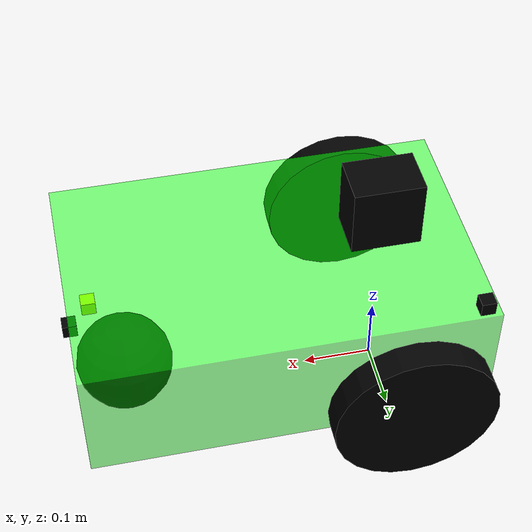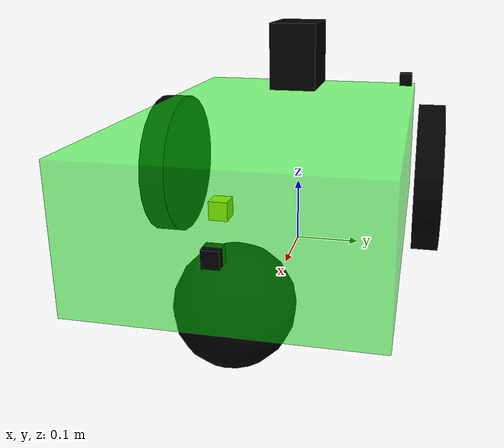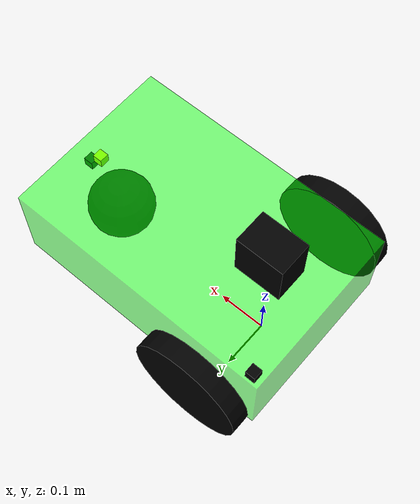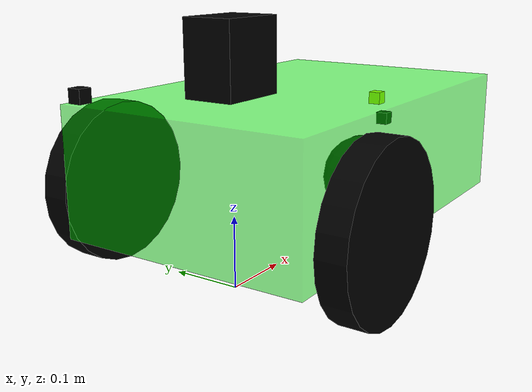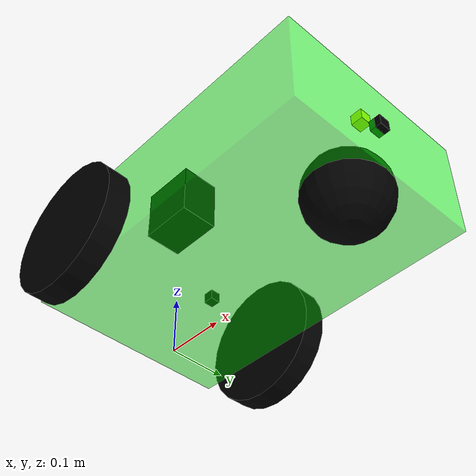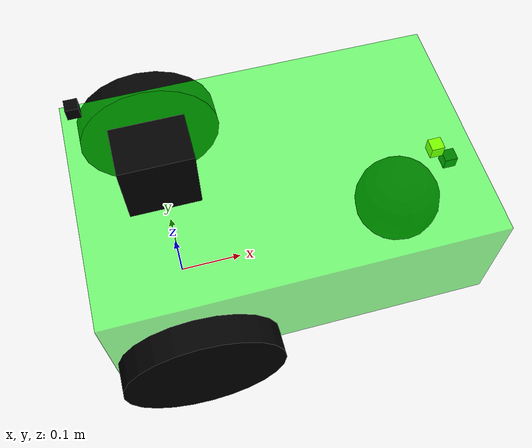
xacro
<?xml version="1.0"?>

<robot xmlns:sensor="http://playerstage.sourceforge.net/gazebo/xmlschema/#sensor"
       xmlns:controller="http://playerstage.sourceforge.net/gazebo/xmlschema/#controller"
       xmlns:interface="http://playerstage.sourceforge.net/gazebo/xmlschema/#interface"
       xmlns:xacro="http://ros.org/wiki/xacro" name="diff_drive_bot">

<xacro:include filename="$(find h4r_rapid_robot_xacros)/def/rapid_robot.xacro"/>

<xacro:include filename="$(find h4r_rapid_robot_xacros)/def/test_robots/diff_drive_bot/properties.xacro"/>
<xacro:include filename="$(find h4r_rapid_robot_xacros)/def/test_robots/diff_drive_bot/chassis.xacro"/>
<xacro:include filename="$(find h4r_rapid_robot_xacros)/def/test_robots/diff_drive_bot/caster.xacro"/>
<xacro:include filename="$(find h4r_rapid_robot_xacros)/def/test_robots/diff_drive_bot/drive.xacro"/>

<xacro:include filename="$(find h4r_rapid_robot_xacros)/def/test_robots/diff_drive_bot/camera.xacro"/>
<xacro:include filename="$(find h4r_rapid_robot_xacros)/def/test_robots/diff_drive_bot/imu.xacro"/>
<xacro:include filename="$(find h4r_rapid_robot_xacros)/def/test_robots/diff_drive_bot/laser.xacro"/>

<xacro:include filename="$(find h4r_rapid_robot_xacros)/def/test_robots/diff_drive_bot/gps.xacro"/>

</robot>

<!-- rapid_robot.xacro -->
<robot xmlns:sensor="http://playerstage.sourceforge.net/gazebo/xmlschema/#sensor"
       xmlns:controller="http://playerstage.sourceforge.net/gazebo/xmlschema/#controller"
       xmlns:interface="http://playerstage.sourceforge.net/gazebo/xmlschema/#interface"
       xmlns:xacro="http://ros.org/wiki/xacro">

<!-- Constants -->
<xacro:include filename="$(find h4r_rapid_robot_xacros)/def/constants.xacro"/>

<!-- Geometry -->
<xacro:include filename="$(find h4r_rapid_robot_xacros)/def/geometry/geo_ins.xacro"/>

<!-- Material -->
<xacro:include filename="$(find h4r_rapid_robot_xacros)/def/material/mat_def.xacro"/>
<xacro:include filename="$(find h4r_rapid_robot_xacros)/def/material/materials.xacro"/>

<!-- Inertia -->
<xacro:include filename="$(find h4r_rapid_robot_xacros)/def/inertia/box_solid.xacro"/>
<xacro:include filename="$(find h4r_rapid_robot_xacros)/def/inertia/cylinder_solid.xacro"/>
<xacro:include filename="$(find h4r_rapid_robot_xacros)/def/inertia/sphere_shell.xacro"/>
<xacro:include filename="$(find h4r_rapid_robot_xacros)/def/inertia/sphere_solid.xacro"/>

<!-- Sensors -->
<xacro:include filename="$(find h4r_rapid_robot_xacros)/def/sensors/distance/laser_2d.xacro"/>
<xacro:include filename="$(find h4r_rapid_robot_xacros)/def/sensors/imaging/camera.xacro"/>
<xacro:include filename="$(find h4r_rapid_robot_xacros)/def/sensors/inertia/imu.xacro"/>
<xacro:include filename="$(find h4r_rapid_robot_xacros)/def/sensors/position/gps.xacro"/>

<!-- Drives -->
<xacro:include filename="$(find h4r_rapid_robot_xacros)/def/drive/wheel_solid.xacro" />
<xacro:include filename="$(find h4r_rapid_robot_xacros)/def/drive/diff_drive.xacro" />

<!-- Joints -->
<xacro:include filename="$(find h4r_rapid_robot_xacros)/def/joints/ros_control.xacro" />
<xacro:include filename="$(find h4r_rapid_robot_xacros)/def/joints/fixed.xacro" />
<xacro:include filename="$(find h4r_rapid_robot_xacros)/def/joints/linear_axis.xacro" />

<!-- Fixes -->
<xacro:include filename="$(find h4r_rapid_robot_xacros)/def/fixes/id_link.xacro"/>

<!-- Simple -->
<xacro:include filename="$(find h4r_rapid_robot_xacros)/def/simple/simple_box.xacro"/>

<!-- Video -->
<xacro:include filename="$(find h4r_rapid_robot_xacros)/def/video/screen.xacro"/>

<!-- World     -->
<xacro:include filename="$(find h4r_rapid_robot_xacros)/def/world/static.xacro"/>

</robot>

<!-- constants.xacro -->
<robot xmlns:sensor="http://playerstage.sourceforge.net/gazebo/xmlschema/#sensor"
       xmlns:controller="http://playerstage.sourceforge.net/gazebo/xmlschema/#controller"
       xmlns:interface="http://playerstage.sourceforge.net/gazebo/xmlschema/#interface"
       xmlns:xacro="http://ros.org/wiki/xacro">

       <!-- Debug Level -->
       <xacro:property name="debugLevel" value="1"/>

       <!-- Pi -->
	   <xacro:property name="rr_const_pi" value="3.1415926535897931"/>
</robot>

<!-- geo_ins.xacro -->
<!-- Inserting geometrys with and without inertia for various other macros -->
<!-- required parameters:
    parent
    has_inertia
    *origin
    *geometry
    *material
    *inertial
-->
<robot xmlns:sensor="http://playerstage.sourceforge.net/gazebo/xmlschema/#sensor"
       xmlns:controller="http://playerstage.sourceforge.net/gazebo/xmlschema/#controller"
       xmlns:interface="http://playerstage.sourceforge.net/gazebo/xmlschema/#interface"
       xmlns:xacro="http://ros.org/wiki/xacro">
<xacro:macro name="rr_geo_ins">
 <link name="${name}_link">
    <visual>
      <xacro:insert_block name="geometry" />
      <xacro:insert_block name="material" />
    </visual>
    <collision name="${name}_link_collision">
          <xacro:insert_block name="geometry" />
    </collision>

    <xacro:if value="${has_inertia}">
    <xacro:insert_block name="inertial" />
    </xacro:if>
</link>
<joint name="${name}_${parent}_joint" type="fixed">
    <parent link="${parent}" />
    <child link="${name}_link" />
    <xacro:insert_block name="origin" />
</joint>
</xacro:macro>
</robot>

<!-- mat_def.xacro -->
<robot xmlns:sensor="http://playerstage.sourceforge.net/gazebo/xmlschema/#sensor"
       xmlns:controller="http://playerstage.sourceforge.net/gazebo/xmlschema/#controller"
       xmlns:interface="http://playerstage.sourceforge.net/gazebo/xmlschema/#interface"
       xmlns:xacro="http://ros.org/wiki/xacro">

<xacro:macro name="rr_mat_gaz" params="name material">
   <gazebo reference="${link}_link">
    <material value="${material}" />
   </gazebo>
</xacro:macro>

<xacro:macro name="rr_mat_color_def" params="color rgba">
    <material name="rr_m_${color}">
        <color rgba="${rgba}"/>
    </material>
</xacro:macro>
</robot>

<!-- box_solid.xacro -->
<robot xmlns:sensor="http://playerstage.sourceforge.net/gazebo/xmlschema/#sensor"
       xmlns:controller="http://playerstage.sourceforge.net/gazebo/xmlschema/#controller"
       xmlns:interface="http://playerstage.sourceforge.net/gazebo/xmlschema/#interface"
       xmlns:xacro="http://ros.org/wiki/xacro"
>
<xacro:macro name="rr_inertia_box_solid" params="x y z mass *origin">
    <inertial>
        <mass value="${mass}" />
        <xacro:insert_block name="origin" />
        <inertia ixx="${(1/12) * mass * (y*y + z*z)}" ixy="0.0" ixz="0.0"
        iyy="${(1/12) * mass * (x*x + z*z)}" iyz="0.0"
        izz="${(1/12) * mass * (x*x + y*y)}" />
    </inertial>
</xacro:macro>
</robot>

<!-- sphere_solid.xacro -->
<robot xmlns:sensor="http://playerstage.sourceforge.net/gazebo/xmlschema/#sensor"
       xmlns:controller="http://playerstage.sourceforge.net/gazebo/xmlschema/#controller"
       xmlns:interface="http://playerstage.sourceforge.net/gazebo/xmlschema/#interface"
       xmlns:xacro="http://ros.org/wiki/xacro"
>
<xacro:macro name="rr_inertia_sphere_solid" params="radius mass *origin">
    <inertial>
      <mass value="${mass}" />
      <xacro:insert_block name="origin" />
      <inertia ixx="${(2/5) * mass * radius * radius}" ixy="0.0" ixz="0.0"
        iyy="${(2/5) * mass * radius * radius}" iyz="0.0"
        izz="${(2/5) * mass * radius * radius}" />
    </inertial>
</xacro:macro>

</robot>

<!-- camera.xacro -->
<robot xmlns:sensor="http://playerstage.sourceforge.net/gazebo/xmlschema/#sensor"
       xmlns:controller="http://playerstage.sourceforge.net/gazebo/xmlschema/#controller"
       xmlns:interface="http://playerstage.sourceforge.net/gazebo/xmlschema/#interface"
       xmlns:xacro="http://ros.org/wiki/xacro">

<xacro:include filename="$(find h4r_rapid_robot_xacros)/def/geometry/geo_ins.xacro"/>
<xacro:macro name="rr_cam"
            params="
                    name
                    always_on
                    frame_name
                    image_width
                    image_height
                    image_format
                    clip_near
                    clip_far
                    noise_type
                    noise_mean
                    noise_std_dev
                    fov
                    hack_baseline
                    dist_K1
                    dist_K2
                    dist_K3
                    dist_T1
                    dist_T2
                    update_rate
                    parent
                    has_inertia
                    *origin
                    *geometry
                    *material
                    *inertial
                    ">

<xacro:rr_geo_ins/>
<gazebo reference="${name}_link">
    <material value="Gazebo/FlatBlack" />
    <sensor type="camera" name="${name}">
        <update_rate>${update_rate}</update_rate>
        <camera name="${name}_head">
            <horizontal_fov>${fov}</horizontal_fov>
            <image>
                <width>${image_width}</width>
                <height>${image_height}</height>
                <format>${image_format}</format>
            </image>
            <clip>
                <near>${clip_near}</near>
                <far>${clip_far}</far>
            </clip>
            <noise>
                <type>${noise_type}</type>
                <mean>${noise_mean}</mean>
                <stddev>${noise_std_dev}</stddev>
            </noise>
        </camera>
        <plugin name="camera_sensor" filename="libgazebo_ros_camera.so">
            <alwaysOn>${always_on}</alwaysOn>
            <updateRate>${update_rate}</updateRate>
            <cameraName>${name}</cameraName>
            <imageTopicName>image_raw</imageTopicName>
            <cameraInfoTopicName>camera_info</cameraInfoTopicName>
            <frameName>${frame_name}</frameName>
            <hackBaseline>${hack_baseline}</hackBaseline>
            <distortionK1>${dist_K1}</distortionK1>
            <distortionK2>${dist_K2}</distortionK2>
            <distortionK3>${dist_K3}</distortionK3>
            <distortionT1>${dist_T1}</distortionT1>
            <distortionT2>${dist_T2}</distortionT2>
        </plugin>
    </sensor>
</gazebo>
<joint name="${frame_name}_${name}_joint" type="fixed">
    <parent link="${name}_link" />
    <child link="${frame_name}" />
    <origin xyz="0 0 0" rpy="-1.57 0 -1.57" />
</joint>
<link name="${frame_name}" ></link>
</xacro:macro>
</robot>

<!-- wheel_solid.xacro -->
<robot xmlns:sensor="http://playerstage.sourceforge.net/gazebo/xmlschema/#sensor"
       xmlns:controller="http://playerstage.sourceforge.net/gazebo/xmlschema/#controller"
       xmlns:interface="http://playerstage.sourceforge.net/gazebo/xmlschema/#interface"
       xmlns:xacro="http://ros.org/wiki/xacro">

    <xacro:include filename="$(find h4r_rapid_robot_xacros)/def/constants.xacro"/>
    <xacro:macro name="rr_wheel_solid"
                     params="name
                             parent
                             radius
                             width
                             mass
                             origin_x origin_y origin_z
                             limit_vel limit_effort
                             contact_stiffness
                             contact_damping
                             friction1
                             friction2
                            ">

        <link name="${name}">
        <inertial>
            <mass value="${mass}"/>
            <origin xyz="0 0 0" rpy="${rr_const_pi/2} 0 0" />
            <inertia  ixx="${1/4*mass*radius*radius+1/12*mass+width*width}"
                      iyy="${1/4*mass*radius*radius+1/12*mass+width*width}"
                      izz="${1/2*mass*radius*radius}"
                      ixy = "0" ixz = "0" iyz = "0"  />
            </inertial>
        <visual>
            <origin xyz="0 0 0"
                    rpy="${rr_const_pi/2} 0 0"/>
            <geometry>
                <cylinder radius="${radius}" length="${width}"/>
            </geometry>
            <material name="WheelBlack">
                <color rgba="0.0 0.0 0.0 1.0"/>
            </material>
        </visual>

        <collision>
            <origin xyz="0 0 0"
                    rpy="${rr_const_pi/2} 0 0"/>
            <geometry>
                <cylinder radius="${radius}" length="${width}"/>
            </geometry>
        </collision>
        </link>

    <joint name="${name}_joint" type="continuous">
        <axis xyz="0 1 0" />
        <origin xyz="${origin_x} ${origin_y} ${origin_z}" py="0 0 0"/>

        <limit effort="${limit_effort}" velocity="${limit_vel}" />

           <parent link="${parent}"/>
        <child link="${name}"/>
    </joint>

    <gazebo reference="${name}">
        <material value="Gazebo/FlatBlack"/>
        <kp>${contact_stiffness}</kp>
        <kd>${contact_damping}</kd>
        <mu1>${friction1}</mu1>
        <mu2>${friction2}</mu2>
        <fdir1>1 0 0</fdir1>
        <maxVel>${limit_vel}</maxVel>
    </gazebo>
    </xacro:macro>
</robot>

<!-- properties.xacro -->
<robot xmlns:sensor="http://playerstage.sourceforge.net/gazebo/xmlschema/#sensor"
       xmlns:controller="http://playerstage.sourceforge.net/gazebo/xmlschema/#controller"
       xmlns:interface="http://playerstage.sourceforge.net/gazebo/xmlschema/#interface"
       xmlns:xacro="http://ros.org/wiki/xacro">

<xacro:property name="chassis_height" value="0.18" />
<xacro:property name="chassis_width" value="0.36" />
<xacro:property name="chassis_len" value="0.56" />
<xacro:property name="chassis_floor_clearance"
                value="0.07" />

<xacro:property name="wheel_diameter" value="0.23" />
<xacro:property name="wheel_width" value="0.04" />
<xacro:property name="wheel_base_center_x" value="-0.16" />
<xacro:property name="caster_x" value="0.21"/>
<xacro:property name="chassis_center_z"
                value="${chassis_floor_clearance+chassis_height/2}" />
<xacro:property name="wheel_separation" value="0.38" />
</robot>

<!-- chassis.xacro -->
<robot xmlns:sensor="http://playerstage.sourceforge.net/gazebo/xmlschema/#sensor"
       xmlns:controller="http://playerstage.sourceforge.net/gazebo/xmlschema/#controller"
       xmlns:interface="http://playerstage.sourceforge.net/gazebo/xmlschema/#interface"
       xmlns:xacro="http://ros.org/wiki/xacro">

<link name="base_link">
    <xacro:rr_inertia_box_solid x="${chassis_len}"
                                y="${chassis_width}"
                                z="${chassis_height}"
                                mass="1">
           <origin xyz=" ${-wheel_base_center_x}
                          0
                           ${chassis_center_z}"
                   rpy="0 0 0" />
    </xacro:rr_inertia_box_solid>
    <visual>
        <origin xyz="${-wheel_base_center_x}
                     0
                     ${chassis_center_z}"
                rpy="0 0 0" />
        <geometry>
            <box size="${chassis_len} ${chassis_width} ${chassis_height}" />
        </geometry>
        <material name="rr_m_green_tp"/>
    </visual>
    <collision>
        <origin xyz="${-wheel_base_center_x} 0 ${chassis_center_z}" rpy="0 0 0" />
        <geometry>
            <box size="${chassis_len} ${chassis_width} ${chassis_height}" />
        </geometry>
    </collision>
</link>
<xacro:rr_m_gz_green name="base"/>

</robot>

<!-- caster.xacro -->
<robot xmlns:sensor="http://playerstage.sourceforge.net/gazebo/xmlschema/#sensor"
       xmlns:controller="http://playerstage.sourceforge.net/gazebo/xmlschema/#controller"
       xmlns:interface="http://playerstage.sourceforge.net/gazebo/xmlschema/#interface"
       xmlns:xacro="http://ros.org/wiki/xacro">

<link name="caster_link">
    <visual>
        <geometry>
            <sphere radius="${chassis_floor_clearance}" />
        </geometry>
        <material name="rr_m_black"/>
    </visual>
    <collision>
        <geometry>
            <sphere radius="${chassis_floor_clearance}" />
        </geometry>
    </collision>
    <xacro:rr_inertia_sphere_solid radius="${chassis_floor_clearance}" mass="0.2">
        <origin xyz="0 0 0" rpy="0 0 0"/>
    </xacro:rr_inertia_sphere_solid>
</link>
<xacro:rr_m_gz_black name="caster"/>

<joint name="base_caster_col_joint" type="fixed">
    <parent link="base_link" />
    <child link="caster_link" />
    <origin xyz="${caster_x-wheel_base_center_x} 0 ${chassis_center_z-(chassis_height/2)}" rpy="0 0 0" />
</joint>

</robot>

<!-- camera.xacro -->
<robot xmlns:sensor="http://playerstage.sourceforge.net/gazebo/xmlschema/#sensor"
       xmlns:controller="http://playerstage.sourceforge.net/gazebo/xmlschema/#controller"
       xmlns:interface="http://playerstage.sourceforge.net/gazebo/xmlschema/#interface"
       xmlns:xacro="http://ros.org/wiki/xacro">
<xacro:rr_cam
name             ="cam0"
always_on        ="true"
frame_name       ="camera0"
image_width      ="640"
image_height     ="480"
image_format     ="R8G8B8"
clip_near        ="0.02"
clip_far         ="300"
noise_type       ="gaussian"
noise_mean       ="0.0"
noise_std_dev    ="0.007"
fov              ="0.873"
hack_baseline    ="0.07"
dist_K1          ="0.0"
dist_K2          ="0.0"
dist_K3          ="0.0"
dist_T1          ="0.0"
dist_T2          ="0.0"
update_rate      ="30"
parent           ="base_link"
has_inertia      ="false"
>
<origin xyz="${chassis_len/2-wheel_base_center_x}
             0
             ${chassis_center_z}" rpy="0 0 0" />
<geometry>
    <box size="0.02 0.02 0.02" />
</geometry>
<material name="Black">
    <color rgba="0 0 0 1"/>
</material>
 <inertial/>
</xacro:rr_cam>
<xacro:rr_m_gz_black name="cam0"/>

</robot>

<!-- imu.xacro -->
<robot xmlns:sensor="http://playerstage.sourceforge.net/gazebo/xmlschema/#sensor"
       xmlns:controller="http://playerstage.sourceforge.net/gazebo/xmlschema/#controller"
       xmlns:interface="http://playerstage.sourceforge.net/gazebo/xmlschema/#interface"
       xmlns:xacro="http://ros.org/wiki/xacro">

<xacro:rr_imu_hector
        name="imu0"
        topic_name="/imu"
        gaussian_noise="0"
        imu_x="0"
        imu_y="0"
        imu_z="0"
        imu_roll="0"
        imu_pitch="0"
        imu_yaw="0"
        parent="base_link"
        has_inertia="false"
        >
        <origin xyz="0.41 0.0 0.2" rpy="0.0 0.0 0" />
        <geometry>
            <box size="0.02 0.02 0.02" />
        </geometry>
        <material name="Yellow">
            <color rgba="1 1 0 1"/>
        </material>
         <inertial/>
    </xacro:rr_imu_hector>
<xacro:rr_m_gz_black name="imu0"/>

</robot>

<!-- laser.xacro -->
<robot xmlns:sensor="http://playerstage.sourceforge.net/gazebo/xmlschema/#sensor"
       xmlns:controller="http://playerstage.sourceforge.net/gazebo/xmlschema/#controller"
       xmlns:interface="http://playerstage.sourceforge.net/gazebo/xmlschema/#interface"
       xmlns:xacro="http://ros.org/wiki/xacro">
<xacro:rr_laser_2d
    name="laser"
    topic_name="/scan"
    update_rate="2.0"
    visualize="false"
    hor_samples="360"
    hor_resolution="1"
    hor_min_angle="${-rr_const_pi}"
    hor_max_angle="${rr_const_pi}"
    range_min="0.20"
    range_max="14"
    range_resolution="0.005"
    noise_type="gaussian"
    noise_mean="0.0"
    noise_stddev="0.01"
    parent="base_link"
    has_inertia="false"
    >
    <origin xyz="0 0 ${chassis_center_z+0.15}" rpy="0 0 0" />
    <geometry>
        <box size="0.098 0.07 0.1" />
    </geometry>
    <material name="Black">
        <color rgba="0 0 0 1"/>
    </material>
    <inertial/>
    <pose>0 0 0 0 0 0</pose>
</xacro:rr_laser_2d>
<xacro:rr_m_gz_black name="laser"/>

</robot>

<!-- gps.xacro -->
<robot xmlns:sensor="http://playerstage.sourceforge.net/gazebo/xmlschema/#sensor"
       xmlns:controller="http://playerstage.sourceforge.net/gazebo/xmlschema/#controller"
       xmlns:interface="http://playerstage.sourceforge.net/gazebo/xmlschema/#interface"
       xmlns:xacro="http://ros.org/wiki/xacro">

<xacro:rr_gps_receiver
    name="gps0"
    reference_latitude="48.652726006"
    reference_longitude="9.184366555"
    reference_heading="0"
    reference_altitude="472.05"
    parent="base_link"
    has_inertia="false">
    <origin xyz="${-(chassis_len/2-0.04/2)-wheel_base_center_x} ${chassis_width/2-0.015}
                 ${chassis_center_z+chassis_height/2+0.02/2}"
                 rpy="0 0 0" />

    <geometry>
        <box size="0.02 0.02 0.02" />
    </geometry>
    <material name="Black">
        <color rgba="0 0 0 1"/>
    </material>
     <inertial/>

</xacro:rr_gps_receiver>
<xacro:rr_m_gz_black name="gps0"/>

</robot>
